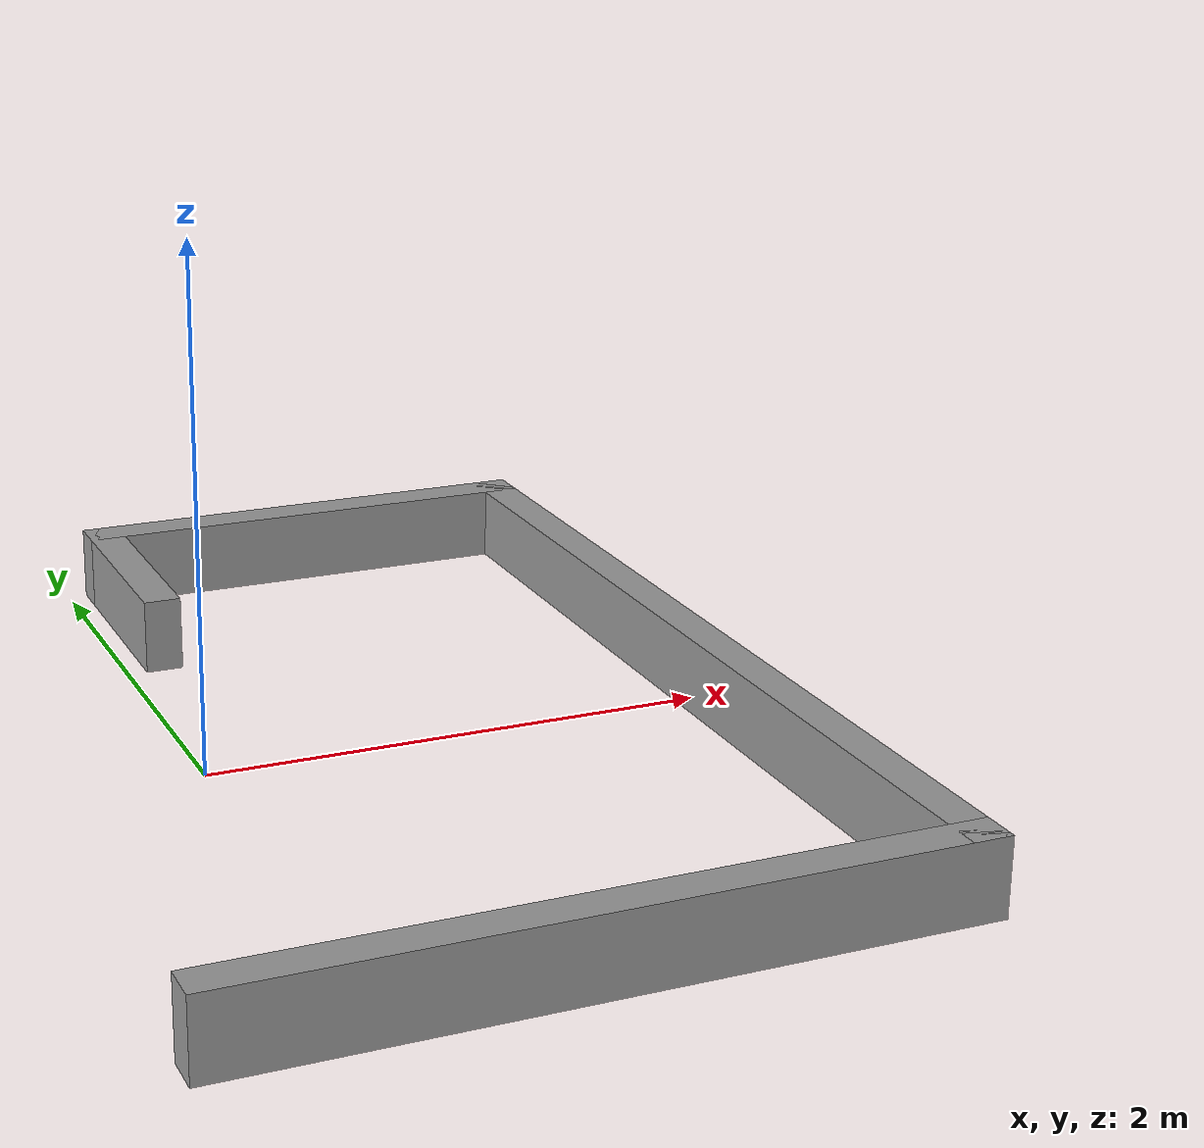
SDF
<?xml version='1.0'?>
<sdf version='1.6'>
  <model name='robot_trap_world'>
    <pose frame=''>0.7 0 0 0 -0 0</pose>
    <link name='Wall_0'>
      <collision name='Wall_0_Collision'>
        <geometry>
          <box>
            <size>4.15 0.15 0.3</size>
          </box>
        </geometry>
        <pose frame=''>0 0 0.15 0 -0 0</pose>
      </collision>
      <visual name='Wall_0_Visual'>
        <pose frame=''>0 0 0.15 0 -0 0</pose>
        <geometry>
          <box>
            <size>4.15 0.15 0.3</size>
          </box>
        </geometry>
        <material>
          <script>
            <uri>file://media/materials/scripts/gazebo.material</uri>
            <name>Gazebo/Grey</name>
          </script>
          <ambient>1 1 1 1</ambient>
        </material>
        <meta>
          <layer>0</layer>
        </meta>
      </visual>
      <pose frame=''>1.3 0 0 0 0 -1.5708</pose>
    </link>
    <link name='Wall_4'>
      <collision name='Wall_4_Collision'>
        <geometry>
          <box>
            <size>2.75 0.15 0.3</size>
          </box>
        </geometry>
        <pose frame=''>0 0 0.15 0 -0 0</pose>
      </collision>
      <visual name='Wall_4_Visual'>
        <pose frame=''>0 0 0.15 0 -0 0</pose>
        <geometry>
          <box>
            <size>2.75 0.15 0.3</size>
          </box>
        </geometry>
        <material>
          <script>
            <uri>file://media/materials/scripts/gazebo.material</uri>
            <name>Gazebo/Grey</name>
          </script>
          <ambient>1 1 1 1</ambient>
        </material>
        <meta>
          <layer>0</layer>
        </meta>
      </visual>
      <pose frame=''>0 -2 0 0 -0 3.14159</pose>
    </link>
    <link name='Wall_6'>
      <collision name='Wall_6_Collision'>
        <geometry>
          <box>
            <size>2 0.15 0.3</size>
          </box>
        </geometry>
        <pose frame=''>0 0 0.15 0 -0 0</pose>
      </collision>
      <visual name='Wall_6_Visual'>
        <pose frame=''>0 0 0.15 0 -0 0</pose>
        <geometry>
          <box>
            <size>2 0.15 0.3</size>
          </box>
        </geometry>
        <material>
          <script>
            <uri>file://media/materials/scripts/gazebo.material</uri>
            <name>Gazebo/Grey</name>
          </script>
          <ambient>1 1 1 1</ambient>
        </material>
        <meta>
          <layer>0</layer>
        </meta>
      </visual>
      <pose frame=''>0.375 2 0 0 -0 3.14159</pose>
    </link>
    <link name='Wall_7'>
      <collision name='Wall_7_Collision'>
        <geometry>
          <box>
            <size>1 0.15 0.3</size>
          </box>
        </geometry>
        <pose frame=''>0 0 0.15 0 -0 0</pose>
      </collision>
      <visual name='Wall_7_Visual'>
        <pose frame=''>0 0 0.15 0 -0 0</pose>
        <geometry>
          <box>
            <size>1 0.15 0.3</size>
          </box>
        </geometry>
        <material>
          <script>
            <uri>file://media/materials/scripts/gazebo.material</uri>
            <name>Gazebo/Grey</name>
          </script>
          <ambient>1 1 1 1</ambient>
        </material>
        <meta>
          <layer>0</layer>
        </meta>
      </visual>
      <pose frame=''>-0.55 1.575 0 0 0 -1.5708</pose>
    </link>
    <static>1</static>
  </model>
</sdf>
